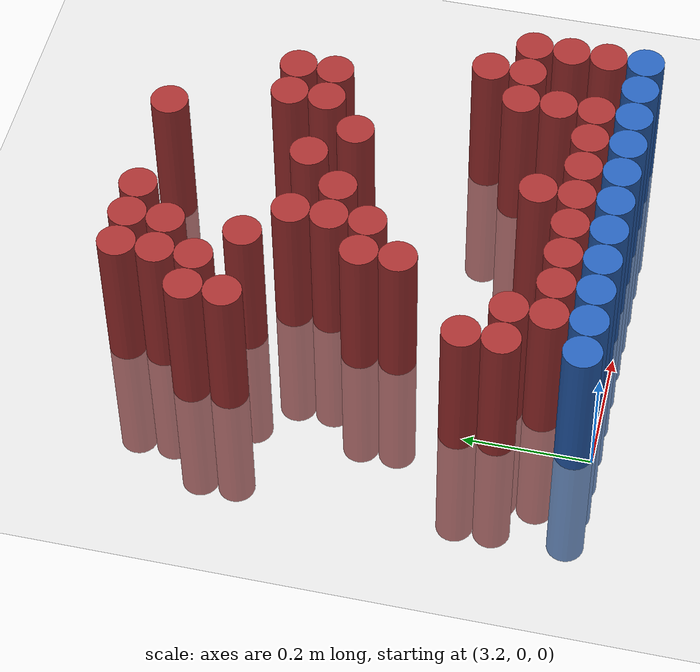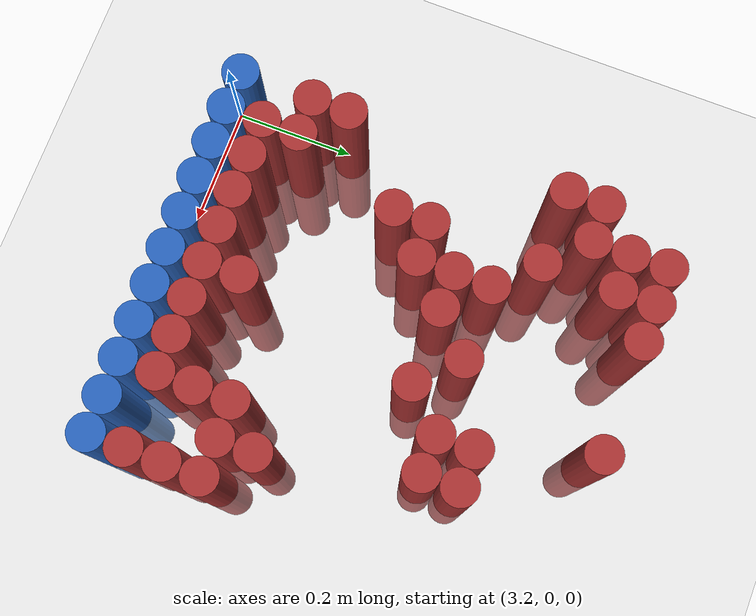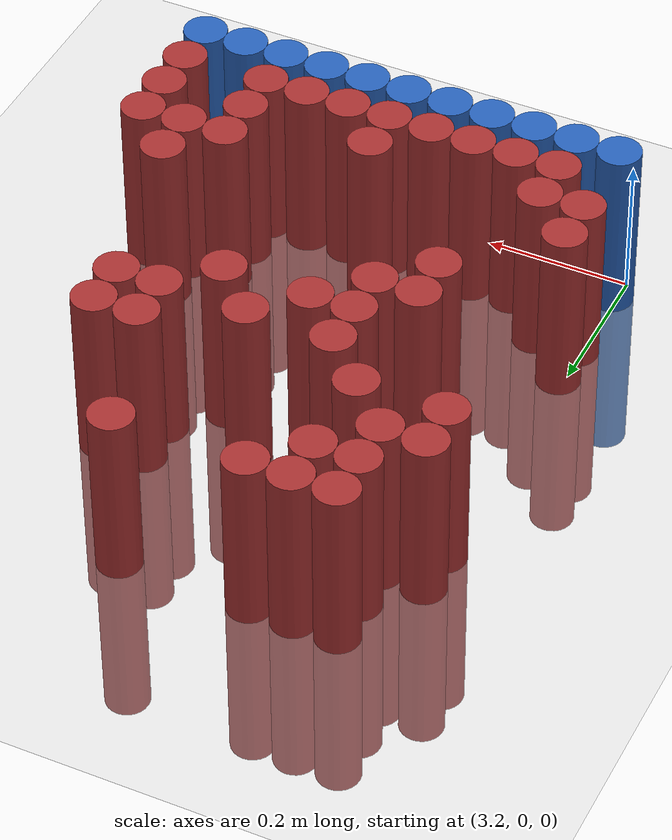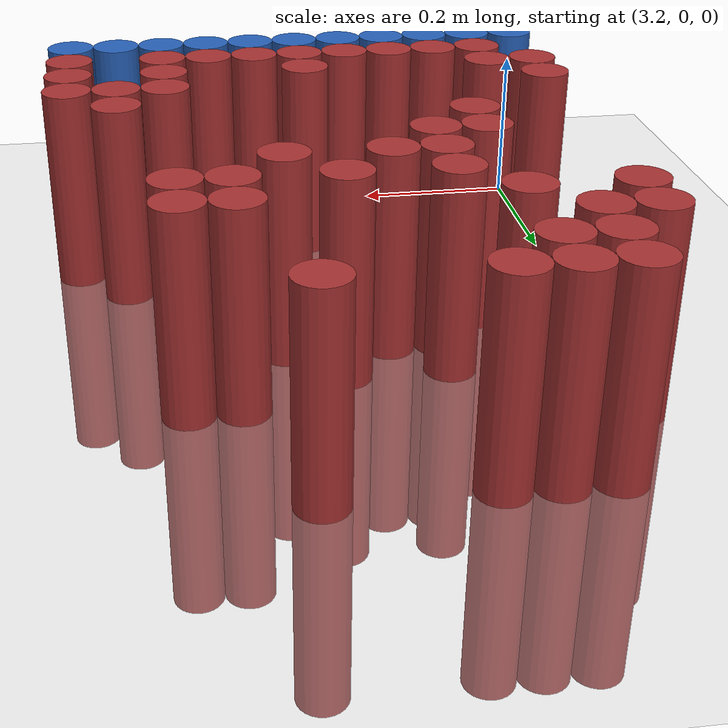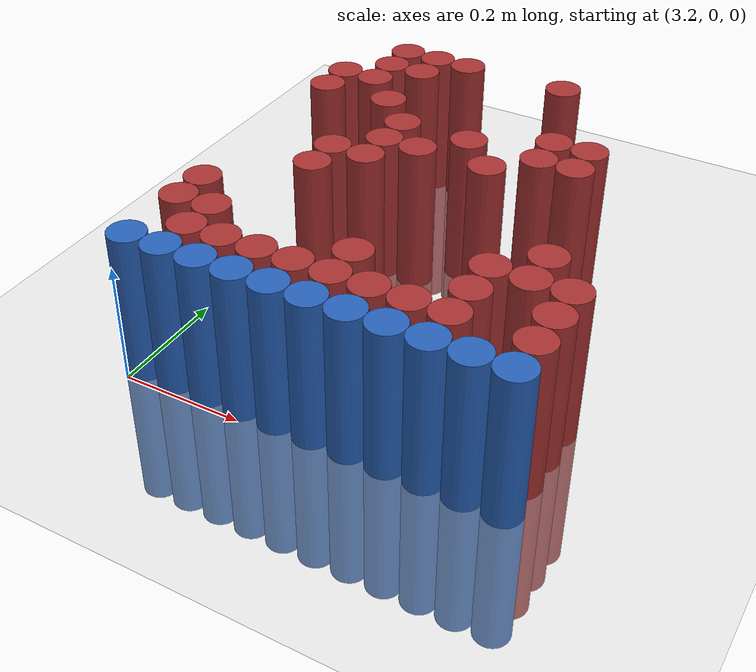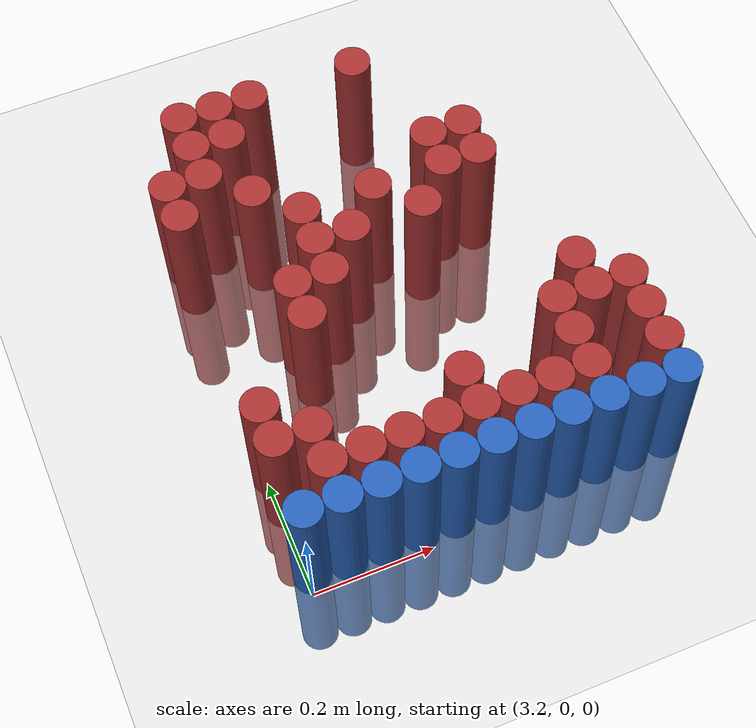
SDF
<sdf version="1.6">
 <world name="default">
  <model name="ground_plane">
   <static>1</static>
   <link name="link">
    <collision name="collision">
     <geometry><plane><normal>0 0 1</normal><size>100 100</size></plane></geometry>
     <surface><friction><ode><mu>100</mu><mu2>50</mu2></ode></friction></surface>
    </collision>
    <visual name="visual">
     <cast_shadows>0</cast_shadows>
     <geometry><plane><normal>0 0 1</normal><size>100 100</size></plane></geometry>
     <material>
      <script><uri>file://media/materials/scripts/gazebo.material</uri><name>Gazebo/Grey</name></script>
     </material>
    </visual>
   </link>
  </model>
  <model name="unit_cylinder_237">
   <static>1</static>
   <pose>3.270000 0.750000 0.000000 0.000000 0.000000 0.000000</pose>
   <link name="link">
    <inertial>
     <mass>1</mass>
     <inertia><ixx>0.145833</ixx><ixy>0</ixy><ixz>0</ixz><iyy>0.145833</iyy><iyz>0</iyz><izz>0.125</izz></inertia>
    </inertial>
    <collision name="collision">
     <geometry><cylinder><radius>0.030000</radius><length>0.5</length></cylinder></geometry>
    </collision>
    <visual name="visual">
     <geometry><cylinder><radius>0.030000</radius><length>0.5</length></cylinder></geometry>
     <material>
      <ambient>0.648000 0.192000 0.192000 1</ambient>
      <diffuse>0.648000 0.192000 0.192000 1</diffuse>
     </material>
     <material>
      <script><name>Gazebo/Grey</name><uri>file://media/materials/scripts/gazebo.material</uri></script>
     </material>
    </visual>
   </link>
  </model>
  <model name="unit_cylinder_238">
   <static>1</static>
   <pose>3.330000 0.750000 0.000000 0.000000 0.000000 0.000000</pose>
   <link name="link">
    <inertial>
     <mass>1</mass>
     <inertia><ixx>0.145833</ixx><ixy>0</ixy><ixz>0</ixz><iyy>0.145833</iyy><iyz>0</iyz><izz>0.125</izz></inertia>
    </inertial>
    <collision name="collision">
     <geometry><cylinder><radius>0.030000</radius><length>0.5</length></cylinder></geometry>
    </collision>
    <visual name="visual">
     <geometry><cylinder><radius>0.030000</radius><length>0.5</length></cylinder></geometry>
     <material>
      <ambient>0.648000 0.192000 0.192000 1</ambient>
      <diffuse>0.648000 0.192000 0.192000 1</diffuse>
     </material>
     <material>
      <script><name>Gazebo/Grey</name><uri>file://media/materials/scripts/gazebo.material</uri></script>
     </material>
    </visual>
   </link>
  </model>
  <model name="unit_cylinder_239">
   <static>1</static>
   <pose>3.390000 0.750000 0.000000 0.000000 0.000000 0.000000</pose>
   <link name="link">
    <inertial>
     <mass>1</mass>
     <inertia><ixx>0.145833</ixx><ixy>0</ixy><ixz>0</ixz><iyy>0.145833</iyy><iyz>0</iyz><izz>0.125</izz></inertia>
    </inertial>
    <collision name="collision">
     <geometry><cylinder><radius>0.030000</radius><length>0.5</length></cylinder></geometry>
    </collision>
    <visual name="visual">
     <geometry><cylinder><radius>0.030000</radius><length>0.5</length></cylinder></geometry>
     <material>
      <ambient>0.648000 0.192000 0.192000 1</ambient>
      <diffuse>0.648000 0.192000 0.192000 1</diffuse>
     </material>
     <material>
      <script><name>Gazebo/Grey</name><uri>file://media/materials/scripts/gazebo.material</uri></script>
     </material>
    </visual>
   </link>
  </model>
  <model name="unit_cylinder_240">
   <static>1</static>
   <pose>3.570000 0.750000 0.000000 0.000000 0.000000 0.000000</pose>
   <link name="link">
    <inertial>
     <mass>1</mass>
     <inertia><ixx>0.145833</ixx><ixy>0</ixy><ixz>0</ixz><iyy>0.145833</iyy><iyz>0</iyz><izz>0.125</izz></inertia>
    </inertial>
    <collision name="collision">
     <geometry><cylinder><radius>0.030000</radius><length>0.5</length></cylinder></geometry>
    </collision>
    <visual name="visual">
     <geometry><cylinder><radius>0.030000</radius><length>0.5</length></cylinder></geometry>
     <material>
      <ambient>0.648000 0.192000 0.192000 1</ambient>
      <diffuse>0.648000 0.192000 0.192000 1</diffuse>
     </material>
     <material>
      <script><name>Gazebo/Grey</name><uri>file://media/materials/scripts/gazebo.material</uri></script>
     </material>
    </visual>
   </link>
  </model>
  <model name="unit_cylinder_251">
   <static>1</static>
   <pose>3.270000 0.690000 0.000000 0.000000 0.000000 0.000000</pose>
   <link name="link">
    <inertial>
     <mass>1</mass>
     <inertia><ixx>0.145833</ixx><ixy>0</ixy><ixz>0</ixz><iyy>0.145833</iyy><iyz>0</iyz><izz>0.125</izz></inertia>
    </inertial>
    <collision name="collision">
     <geometry><cylinder><radius>0.030000</radius><length>0.5</length></cylinder></geometry>
    </collision>
    <visual name="visual">
     <geometry><cylinder><radius>0.030000</radius><length>0.5</length></cylinder></geometry>
     <material>
      <ambient>0.648000 0.192000 0.192000 1</ambient>
      <diffuse>0.648000 0.192000 0.192000 1</diffuse>
     </material>
     <material>
      <script><name>Gazebo/Grey</name><uri>file://media/materials/scripts/gazebo.material</uri></script>
     </material>
    </visual>
   </link>
  </model>
  <model name="unit_cylinder_252">
   <static>1</static>
   <pose>3.330000 0.690000 0.000000 0.000000 0.000000 0.000000</pose>
   <link name="link">
    <inertial>
     <mass>1</mass>
     <inertia><ixx>0.145833</ixx><ixy>0</ixy><ixz>0</ixz><iyy>0.145833</iyy><iyz>0</iyz><izz>0.125</izz></inertia>
    </inertial>
    <collision name="collision">
     <geometry><cylinder><radius>0.030000</radius><length>0.5</length></cylinder></geometry>
    </collision>
    <visual name="visual">
     <geometry><cylinder><radius>0.030000</radius><length>0.5</length></cylinder></geometry>
     <material>
      <ambient>0.648000 0.192000 0.192000 1</ambient>
      <diffuse>0.648000 0.192000 0.192000 1</diffuse>
     </material>
     <material>
      <script><name>Gazebo/Grey</name><uri>file://media/materials/scripts/gazebo.material</uri></script>
     </material>
    </visual>
   </link>
  </model>
  <model name="unit_cylinder_261">
   <static>1</static>
   <pose>3.210000 0.630000 0.000000 0.000000 0.000000 0.000000</pose>
   <link name="link">
    <inertial>
     <mass>1</mass>
     <inertia><ixx>0.145833</ixx><ixy>0</ixy><ixz>0</ixz><iyy>0.145833</iyy><iyz>0</iyz><izz>0.125</izz></inertia>
    </inertial>
    <collision name="collision">
     <geometry><cylinder><radius>0.030000</radius><length>0.5</length></cylinder></geometry>
    </collision>
    <visual name="visual">
     <geometry><cylinder><radius>0.030000</radius><length>0.5</length></cylinder></geometry>
     <material>
      <ambient>0.648000 0.192000 0.192000 1</ambient>
      <diffuse>0.648000 0.192000 0.192000 1</diffuse>
     </material>
     <material>
      <script><name>Gazebo/Grey</name><uri>file://media/materials/scripts/gazebo.material</uri></script>
     </material>
    </visual>
   </link>
  </model>
  <model name="unit_cylinder_262">
   <static>1</static>
   <pose>3.270000 0.630000 0.000000 0.000000 0.000000 0.000000</pose>
   <link name="link">
    <inertial>
     <mass>1</mass>
     <inertia><ixx>0.145833</ixx><ixy>0</ixy><ixz>0</ixz><iyy>0.145833</iyy><iyz>0</iyz><izz>0.125</izz></inertia>
    </inertial>
    <collision name="collision">
     <geometry><cylinder><radius>0.030000</radius><length>0.5</length></cylinder></geometry>
    </collision>
    <visual name="visual">
     <geometry><cylinder><radius>0.030000</radius><length>0.5</length></cylinder></geometry>
     <material>
      <ambient>0.648000 0.192000 0.192000 1</ambient>
      <diffuse>0.648000 0.192000 0.192000 1</diffuse>
     </material>
     <material>
      <script><name>Gazebo/Grey</name><uri>file://media/materials/scripts/gazebo.material</uri></script>
     </material>
    </visual>
   </link>
  </model>
  <model name="unit_cylinder_270">
   <static>1</static>
   <pose>3.210000 0.570000 0.000000 0.000000 0.000000 0.000000</pose>
   <link name="link">
    <inertial>
     <mass>1</mass>
     <inertia><ixx>0.145833</ixx><ixy>0</ixy><ixz>0</ixz><iyy>0.145833</iyy><iyz>0</iyz><izz>0.125</izz></inertia>
    </inertial>
    <collision name="collision">
     <geometry><cylinder><radius>0.030000</radius><length>0.5</length></cylinder></geometry>
    </collision>
    <visual name="visual">
     <geometry><cylinder><radius>0.030000</radius><length>0.5</length></cylinder></geometry>
     <material>
      <ambient>0.648000 0.192000 0.192000 1</ambient>
      <diffuse>0.648000 0.192000 0.192000 1</diffuse>
     </material>
     <material>
      <script><name>Gazebo/Grey</name><uri>file://media/materials/scripts/gazebo.material</uri></script>
     </material>
    </visual>
   </link>
  </model>
  <model name="unit_cylinder_271">
   <static>1</static>
   <pose>3.330000 0.570000 0.000000 0.000000 0.000000 0.000000</pose>
   <link name="link">
    <inertial>
     <mass>1</mass>
     <inertia><ixx>0.145833</ixx><ixy>0</ixy><ixz>0</ixz><iyy>0.145833</iyy><iyz>0</iyz><izz>0.125</izz></inertia>
    </inertial>
    <collision name="collision">
     <geometry><cylinder><radius>0.030000</radius><length>0.5</length></cylinder></geometry>
    </collision>
    <visual name="visual">
     <geometry><cylinder><radius>0.030000</radius><length>0.5</length></cylinder></geometry>
     <material>
      <ambient>0.648000 0.192000 0.192000 1</ambient>
      <diffuse>0.648000 0.192000 0.192000 1</diffuse>
     </material>
     <material>
      <script><name>Gazebo/Grey</name><uri>file://media/materials/scripts/gazebo.material</uri></script>
     </material>
    </visual>
   </link>
  </model>
  <model name="unit_cylinder_272">
   <static>1</static>
   <pose>3.630000 0.570000 0.000000 0.000000 0.000000 0.000000</pose>
   <link name="link">
    <inertial>
     <mass>1</mass>
     <inertia><ixx>0.145833</ixx><ixy>0</ixy><ixz>0</ixz><iyy>0.145833</iyy><iyz>0</iyz><izz>0.125</izz></inertia>
    </inertial>
    <collision name="collision">
     <geometry><cylinder><radius>0.030000</radius><length>0.5</length></cylinder></geometry>
    </collision>
    <visual name="visual">
     <geometry><cylinder><radius>0.030000</radius><length>0.5</length></cylinder></geometry>
     <material>
      <ambient>0.648000 0.192000 0.192000 1</ambient>
      <diffuse>0.648000 0.192000 0.192000 1</diffuse>
     </material>
     <material>
      <script><name>Gazebo/Grey</name><uri>file://media/materials/scripts/gazebo.material</uri></script>
     </material>
    </visual>
   </link>
  </model>
  <model name="unit_cylinder_273">
   <static>1</static>
   <pose>3.690000 0.570000 0.000000 0.000000 0.000000 0.000000</pose>
   <link name="link">
    <inertial>
     <mass>1</mass>
     <inertia><ixx>0.145833</ixx><ixy>0</ixy><ixz>0</ixz><iyy>0.145833</iyy><iyz>0</iyz><izz>0.125</izz></inertia>
    </inertial>
    <collision name="collision">
     <geometry><cylinder><radius>0.030000</radius><length>0.5</length></cylinder></geometry>
    </collision>
    <visual name="visual">
     <geometry><cylinder><radius>0.030000</radius><length>0.5</length></cylinder></geometry>
     <material>
      <ambient>0.648000 0.192000 0.192000 1</ambient>
      <diffuse>0.648000 0.192000 0.192000 1</diffuse>
     </material>
     <material>
      <script><name>Gazebo/Grey</name><uri>file://media/materials/scripts/gazebo.material</uri></script>
     </material>
    </visual>
   </link>
  </model>
  <model name="unit_cylinder_278">
   <static>1</static>
   <pose>3.390000 0.510000 0.000000 0.000000 0.000000 0.000000</pose>
   <link name="link">
    <inertial>
     <mass>1</mass>
     <inertia><ixx>0.145833</ixx><ixy>0</ixy><ixz>0</ixz><iyy>0.145833</iyy><iyz>0</iyz><izz>0.125</izz></inertia>
    </inertial>
    <collision name="collision">
     <geometry><cylinder><radius>0.030000</radius><length>0.5</length></cylinder></geometry>
    </collision>
    <visual name="visual">
     <geometry><cylinder><radius>0.030000</radius><length>0.5</length></cylinder></geometry>
     <material>
      <ambient>0.648000 0.192000 0.192000 1</ambient>
      <diffuse>0.648000 0.192000 0.192000 1</diffuse>
     </material>
     <material>
      <script><name>Gazebo/Grey</name><uri>file://media/materials/scripts/gazebo.material</uri></script>
     </material>
    </visual>
   </link>
  </model>
  <model name="unit_cylinder_279">
   <static>1</static>
   <pose>3.510000 0.510000 0.000000 0.000000 0.000000 0.000000</pose>
   <link name="link">
    <inertial>
     <mass>1</mass>
     <inertia><ixx>0.145833</ixx><ixy>0</ixy><ixz>0</ixz><iyy>0.145833</iyy><iyz>0</iyz><izz>0.125</izz></inertia>
    </inertial>
    <collision name="collision">
     <geometry><cylinder><radius>0.030000</radius><length>0.5</length></cylinder></geometry>
    </collision>
    <visual name="visual">
     <geometry><cylinder><radius>0.030000</radius><length>0.5</length></cylinder></geometry>
     <material>
      <ambient>0.648000 0.192000 0.192000 1</ambient>
      <diffuse>0.648000 0.192000 0.192000 1</diffuse>
     </material>
     <material>
      <script><name>Gazebo/Grey</name><uri>file://media/materials/scripts/gazebo.material</uri></script>
     </material>
    </visual>
   </link>
  </model>
  <model name="unit_cylinder_280">
   <static>1</static>
   <pose>3.630000 0.510000 0.000000 0.000000 0.000000 0.000000</pose>
   <link name="link">
    <inertial>
     <mass>1</mass>
     <inertia><ixx>0.145833</ixx><ixy>0</ixy><ixz>0</ixz><iyy>0.145833</iyy><iyz>0</iyz><izz>0.125</izz></inertia>
    </inertial>
    <collision name="collision">
     <geometry><cylinder><radius>0.030000</radius><length>0.5</length></cylinder></geometry>
    </collision>
    <visual name="visual">
     <geometry><cylinder><radius>0.030000</radius><length>0.5</length></cylinder></geometry>
     <material>
      <ambient>0.648000 0.192000 0.192000 1</ambient>
      <diffuse>0.648000 0.192000 0.192000 1</diffuse>
     </material>
     <material>
      <script><name>Gazebo/Grey</name><uri>file://media/materials/scripts/gazebo.material</uri></script>
     </material>
    </visual>
   </link>
  </model>
  <model name="unit_cylinder_281">
   <static>1</static>
   <pose>3.690000 0.510000 0.000000 0.000000 0.000000 0.000000</pose>
   <link name="link">
    <inertial>
     <mass>1</mass>
     <inertia><ixx>0.145833</ixx><ixy>0</ixy><ixz>0</ixz><iyy>0.145833</iyy><iyz>0</iyz><izz>0.125</izz></inertia>
    </inertial>
    <collision name="collision">
     <geometry><cylinder><radius>0.030000</radius><length>0.5</length></cylinder></geometry>
    </collision>
    <visual name="visual">
     <geometry><cylinder><radius>0.030000</radius><length>0.5</length></cylinder></geometry>
     <material>
      <ambient>0.648000 0.192000 0.192000 1</ambient>
      <diffuse>0.648000 0.192000 0.192000 1</diffuse>
     </material>
     <material>
      <script><name>Gazebo/Grey</name><uri>file://media/materials/scripts/gazebo.material</uri></script>
     </material>
    </visual>
   </link>
  </model>
  <model name="unit_cylinder_284">
   <static>1</static>
   <pose>3.390000 0.450000 0.000000 0.000000 0.000000 0.000000</pose>
   <link name="link">
    <inertial>
     <mass>1</mass>
     <inertia><ixx>0.145833</ixx><ixy>0</ixy><ixz>0</ixz><iyy>0.145833</iyy><iyz>0</iyz><izz>0.125</izz></inertia>
    </inertial>
    <collision name="collision">
     <geometry><cylinder><radius>0.030000</radius><length>0.5</length></cylinder></geometry>
    </collision>
    <visual name="visual">
     <geometry><cylinder><radius>0.030000</radius><length>0.5</length></cylinder></geometry>
     <material>
      <ambient>0.648000 0.192000 0.192000 1</ambient>
      <diffuse>0.648000 0.192000 0.192000 1</diffuse>
     </material>
     <material>
      <script><name>Gazebo/Grey</name><uri>file://media/materials/scripts/gazebo.material</uri></script>
     </material>
    </visual>
   </link>
  </model>
  <model name="unit_cylinder_285">
   <static>1</static>
   <pose>3.450000 0.450000 0.000000 0.000000 0.000000 0.000000</pose>
   <link name="link">
    <inertial>
     <mass>1</mass>
     <inertia><ixx>0.145833</ixx><ixy>0</ixy><ixz>0</ixz><iyy>0.145833</iyy><iyz>0</iyz><izz>0.125</izz></inertia>
    </inertial>
    <collision name="collision">
     <geometry><cylinder><radius>0.030000</radius><length>0.5</length></cylinder></geometry>
    </collision>
    <visual name="visual">
     <geometry><cylinder><radius>0.030000</radius><length>0.5</length></cylinder></geometry>
     <material>
      <ambient>0.648000 0.192000 0.192000 1</ambient>
      <diffuse>0.648000 0.192000 0.192000 1</diffuse>
     </material>
     <material>
      <script><name>Gazebo/Grey</name><uri>file://media/materials/scripts/gazebo.material</uri></script>
     </material>
    </visual>
   </link>
  </model>
  <model name="unit_cylinder_286">
   <static>1</static>
   <pose>3.570000 0.450000 0.000000 0.000000 0.000000 0.000000</pose>
   <link name="link">
    <inertial>
     <mass>1</mass>
     <inertia><ixx>0.145833</ixx><ixy>0</ixy><ixz>0</ixz><iyy>0.145833</iyy><iyz>0</iyz><izz>0.125</izz></inertia>
    </inertial>
    <collision name="collision">
     <geometry><cylinder><radius>0.030000</radius><length>0.5</length></cylinder></geometry>
    </collision>
    <visual name="visual">
     <geometry><cylinder><radius>0.030000</radius><length>0.5</length></cylinder></geometry>
     <material>
      <ambient>0.648000 0.192000 0.192000 1</ambient>
      <diffuse>0.648000 0.192000 0.192000 1</diffuse>
     </material>
     <material>
      <script><name>Gazebo/Grey</name><uri>file://media/materials/scripts/gazebo.material</uri></script>
     </material>
    </visual>
   </link>
  </model>
  <model name="unit_cylinder_291">
   <static>1</static>
   <pose>3.330000 0.390000 0.000000 0.000000 0.000000 0.000000</pose>
   <link name="link">
    <inertial>
     <mass>1</mass>
     <inertia><ixx>0.145833</ixx><ixy>0</ixy><ixz>0</ixz><iyy>0.145833</iyy><iyz>0</iyz><izz>0.125</izz></inertia>
    </inertial>
    <collision name="collision">
     <geometry><cylinder><radius>0.030000</radius><length>0.5</length></cylinder></geometry>
    </collision>
    <visual name="visual">
     <geometry><cylinder><radius>0.030000</radius><length>0.5</length></cylinder></geometry>
     <material>
      <ambient>0.648000 0.192000 0.192000 1</ambient>
      <diffuse>0.648000 0.192000 0.192000 1</diffuse>
     </material>
     <material>
      <script><name>Gazebo/Grey</name><uri>file://media/materials/scripts/gazebo.material</uri></script>
     </material>
    </visual>
   </link>
  </model>
  <model name="unit_cylinder_292">
   <static>1</static>
   <pose>3.390000 0.390000 0.000000 0.000000 0.000000 0.000000</pose>
   <link name="link">
    <inertial>
     <mass>1</mass>
     <inertia><ixx>0.145833</ixx><ixy>0</ixy><ixz>0</ixz><iyy>0.145833</iyy><iyz>0</iyz><izz>0.125</izz></inertia>
    </inertial>
    <collision name="collision">
     <geometry><cylinder><radius>0.030000</radius><length>0.5</length></cylinder></geometry>
    </collision>
    <visual name="visual">
     <geometry><cylinder><radius>0.030000</radius><length>0.5</length></cylinder></geometry>
     <material>
      <ambient>0.648000 0.192000 0.192000 1</ambient>
      <diffuse>0.648000 0.192000 0.192000 1</diffuse>
     </material>
     <material>
      <script><name>Gazebo/Grey</name><uri>file://media/materials/scripts/gazebo.material</uri></script>
     </material>
    </visual>
   </link>
  </model>
  <model name="unit_cylinder_295">
   <static>1</static>
   <pose>3.330000 0.330000 0.000000 0.000000 0.000000 0.000000</pose>
   <link name="link">
    <inertial>
     <mass>1</mass>
     <inertia><ixx>0.145833</ixx><ixy>0</ixy><ixz>0</ixz><iyy>0.145833</iyy><iyz>0</iyz><izz>0.125</izz></inertia>
    </inertial>
    <collision name="collision">
     <geometry><cylinder><radius>0.030000</radius><length>0.5</length></cylinder></geometry>
    </collision>
    <visual name="visual">
     <geometry><cylinder><radius>0.030000</radius><length>0.5</length></cylinder></geometry>
     <material>
      <ambient>0.648000 0.192000 0.192000 1</ambient>
      <diffuse>0.648000 0.192000 0.192000 1</diffuse>
     </material>
     <material>
      <script><name>Gazebo/Grey</name><uri>file://media/materials/scripts/gazebo.material</uri></script>
     </material>
    </visual>
   </link>
  </model>
  <model name="unit_cylinder_300">
   <static>1</static>
   <pose>3.750000 0.270000 0.000000 0.000000 0.000000 0.000000</pose>
   <link name="link">
    <inertial>
     <mass>1</mass>
     <inertia><ixx>0.145833</ixx><ixy>0</ixy><ixz>0</ixz><iyy>0.145833</iyy><iyz>0</iyz><izz>0.125</izz></inertia>
    </inertial>
    <collision name="collision">
     <geometry><cylinder><radius>0.030000</radius><length>0.5</length></cylinder></geometry>
    </collision>
    <visual name="visual">
     <geometry><cylinder><radius>0.030000</radius><length>0.5</length></cylinder></geometry>
     <material>
      <ambient>0.648000 0.192000 0.192000 1</ambient>
      <diffuse>0.648000 0.192000 0.192000 1</diffuse>
     </material>
     <material>
      <script><name>Gazebo/Grey</name><uri>file://media/materials/scripts/gazebo.material</uri></script>
     </material>
    </visual>
   </link>
  </model>
  <model name="unit_cylinder_305">
   <static>1</static>
   <pose>3.210000 0.210000 0.000000 0.000000 0.000000 0.000000</pose>
   <link name="link">
    <inertial>
     <mass>1</mass>
     <inertia><ixx>0.145833</ixx><ixy>0</ixy><ixz>0</ixz><iyy>0.145833</iyy><iyz>0</iyz><izz>0.125</izz></inertia>
    </inertial>
    <collision name="collision">
     <geometry><cylinder><radius>0.030000</radius><length>0.5</length></cylinder></geometry>
    </collision>
    <visual name="visual">
     <geometry><cylinder><radius>0.030000</radius><length>0.5</length></cylinder></geometry>
     <material>
      <ambient>0.648000 0.192000 0.192000 1</ambient>
      <diffuse>0.648000 0.192000 0.192000 1</diffuse>
     </material>
     <material>
      <script><name>Gazebo/Grey</name><uri>file://media/materials/scripts/gazebo.material</uri></script>
     </material>
    </visual>
   </link>
  </model>
  <model name="unit_cylinder_306">
   <static>1</static>
   <pose>3.690000 0.210000 0.000000 0.000000 0.000000 0.000000</pose>
   <link name="link">
    <inertial>
     <mass>1</mass>
     <inertia><ixx>0.145833</ixx><ixy>0</ixy><ixz>0</ixz><iyy>0.145833</iyy><iyz>0</iyz><izz>0.125</izz></inertia>
    </inertial>
    <collision name="collision">
     <geometry><cylinder><radius>0.030000</radius><length>0.5</length></cylinder></geometry>
    </collision>
    <visual name="visual">
     <geometry><cylinder><radius>0.030000</radius><length>0.5</length></cylinder></geometry>
     <material>
      <ambient>0.648000 0.192000 0.192000 1</ambient>
      <diffuse>0.648000 0.192000 0.192000 1</diffuse>
     </material>
     <material>
      <script><name>Gazebo/Grey</name><uri>file://media/materials/scripts/gazebo.material</uri></script>
     </material>
    </visual>
   </link>
  </model>
  <model name="unit_cylinder_307">
   <static>1</static>
   <pose>3.750000 0.210000 0.000000 0.000000 0.000000 0.000000</pose>
   <link name="link">
    <inertial>
     <mass>1</mass>
     <inertia><ixx>0.145833</ixx><ixy>0</ixy><ixz>0</ixz><iyy>0.145833</iyy><iyz>0</iyz><izz>0.125</izz></inertia>
    </inertial>
    <collision name="collision">
     <geometry><cylinder><radius>0.030000</radius><length>0.5</length></cylinder></geometry>
    </collision>
    <visual name="visual">
     <geometry><cylinder><radius>0.030000</radius><length>0.5</length></cylinder></geometry>
     <material>
      <ambient>0.648000 0.192000 0.192000 1</ambient>
      <diffuse>0.648000 0.192000 0.192000 1</diffuse>
     </material>
     <material>
      <script><name>Gazebo/Grey</name><uri>file://media/materials/scripts/gazebo.material</uri></script>
     </material>
    </visual>
   </link>
  </model>
  <model name="unit_cylinder_308">
   <static>1</static>
   <pose>3.810000 0.210000 0.000000 0.000000 0.000000 0.000000</pose>
   <link name="link">
    <inertial>
     <mass>1</mass>
     <inertia><ixx>0.145833</ixx><ixy>0</ixy><ixz>0</ixz><iyy>0.145833</iyy><iyz>0</iyz><izz>0.125</izz></inertia>
    </inertial>
    <collision name="collision">
     <geometry><cylinder><radius>0.030000</radius><length>0.5</length></cylinder></geometry>
    </collision>
    <visual name="visual">
     <geometry><cylinder><radius>0.030000</radius><length>0.5</length></cylinder></geometry>
     <material>
      <ambient>0.648000 0.192000 0.192000 1</ambient>
      <diffuse>0.648000 0.192000 0.192000 1</diffuse>
     </material>
     <material>
      <script><name>Gazebo/Grey</name><uri>file://media/materials/scripts/gazebo.material</uri></script>
     </material>
    </visual>
   </link>
  </model>
  <model name="unit_cylinder_311">
   <static>1</static>
   <pose>3.210000 0.150000 0.000000 0.000000 0.000000 0.000000</pose>
   <link name="link">
    <inertial>
     <mass>1</mass>
     <inertia><ixx>0.145833</ixx><ixy>0</ixy><ixz>0</ixz><iyy>0.145833</iyy><iyz>0</iyz><izz>0.125</izz></inertia>
    </inertial>
    <collision name="collision">
     <geometry><cylinder><radius>0.030000</radius><length>0.5</length></cylinder></geometry>
    </collision>
    <visual name="visual">
     <geometry><cylinder><radius>0.030000</radius><length>0.5</length></cylinder></geometry>
     <material>
      <ambient>0.648000 0.192000 0.192000 1</ambient>
      <diffuse>0.648000 0.192000 0.192000 1</diffuse>
     </material>
     <material>
      <script><name>Gazebo/Grey</name><uri>file://media/materials/scripts/gazebo.material</uri></script>
     </material>
    </visual>
   </link>
  </model>
  <model name="unit_cylinder_312">
   <static>1</static>
   <pose>3.270000 0.150000 0.000000 0.000000 0.000000 0.000000</pose>
   <link name="link">
    <inertial>
     <mass>1</mass>
     <inertia><ixx>0.145833</ixx><ixy>0</ixy><ixz>0</ixz><iyy>0.145833</iyy><iyz>0</iyz><izz>0.125</izz></inertia>
    </inertial>
    <collision name="collision">
     <geometry><cylinder><radius>0.030000</radius><length>0.5</length></cylinder></geometry>
    </collision>
    <visual name="visual">
     <geometry><cylinder><radius>0.030000</radius><length>0.5</length></cylinder></geometry>
     <material>
      <ambient>0.648000 0.192000 0.192000 1</ambient>
      <diffuse>0.648000 0.192000 0.192000 1</diffuse>
     </material>
     <material>
      <script><name>Gazebo/Grey</name><uri>file://media/materials/scripts/gazebo.material</uri></script>
     </material>
    </visual>
   </link>
  </model>
  <model name="unit_cylinder_313">
   <static>1</static>
   <pose>3.510000 0.150000 0.000000 0.000000 0.000000 0.000000</pose>
   <link name="link">
    <inertial>
     <mass>1</mass>
     <inertia><ixx>0.145833</ixx><ixy>0</ixy><ixz>0</ixz><iyy>0.145833</iyy><iyz>0</iyz><izz>0.125</izz></inertia>
    </inertial>
    <collision name="collision">
     <geometry><cylinder><radius>0.030000</radius><length>0.5</length></cylinder></geometry>
    </collision>
    <visual name="visual">
     <geometry><cylinder><radius>0.030000</radius><length>0.5</length></cylinder></geometry>
     <material>
      <ambient>0.648000 0.192000 0.192000 1</ambient>
      <diffuse>0.648000 0.192000 0.192000 1</diffuse>
     </material>
     <material>
      <script><name>Gazebo/Grey</name><uri>file://media/materials/scripts/gazebo.material</uri></script>
     </material>
    </visual>
   </link>
  </model>
  <model name="unit_cylinder_314">
   <static>1</static>
   <pose>3.690000 0.150000 0.000000 0.000000 0.000000 0.000000</pose>
   <link name="link">
    <inertial>
     <mass>1</mass>
     <inertia><ixx>0.145833</ixx><ixy>0</ixy><ixz>0</ixz><iyy>0.145833</iyy><iyz>0</iyz><izz>0.125</izz></inertia>
    </inertial>
    <collision name="collision">
     <geometry><cylinder><radius>0.030000</radius><length>0.5</length></cylinder></geometry>
    </collision>
    <visual name="visual">
     <geometry><cylinder><radius>0.030000</radius><length>0.5</length></cylinder></geometry>
     <material>
      <ambient>0.648000 0.192000 0.192000 1</ambient>
      <diffuse>0.648000 0.192000 0.192000 1</diffuse>
     </material>
     <material>
      <script><name>Gazebo/Grey</name><uri>file://media/materials/scripts/gazebo.material</uri></script>
     </material>
    </visual>
   </link>
  </model>
  <model name="unit_cylinder_315">
   <static>1</static>
   <pose>3.810000 0.150000 0.000000 0.000000 0.000000 0.000000</pose>
   <link name="link">
    <inertial>
     <mass>1</mass>
     <inertia><ixx>0.145833</ixx><ixy>0</ixy><ixz>0</ixz><iyy>0.145833</iyy><iyz>0</iyz><izz>0.125</izz></inertia>
    </inertial>
    <collision name="collision">
     <geometry><cylinder><radius>0.030000</radius><length>0.5</length></cylinder></geometry>
    </collision>
    <visual name="visual">
     <geometry><cylinder><radius>0.030000</radius><length>0.5</length></cylinder></geometry>
     <material>
      <ambient>0.648000 0.192000 0.192000 1</ambient>
      <diffuse>0.648000 0.192000 0.192000 1</diffuse>
     </material>
     <material>
      <script><name>Gazebo/Grey</name><uri>file://media/materials/scripts/gazebo.material</uri></script>
     </material>
    </visual>
   </link>
  </model>
  <model name="unit_cylinder_325">
   <static>1</static>
   <pose>3.270000 0.090000 0.000000 0.000000 0.000000 0.000000</pose>
   <link name="link">
    <inertial>
     <mass>1</mass>
     <inertia><ixx>0.145833</ixx><ixy>0</ixy><ixz>0</ixz><iyy>0.145833</iyy><iyz>0</iyz><izz>0.125</izz></inertia>
    </inertial>
    <collision name="collision">
     <geometry><cylinder><radius>0.030000</radius><length>0.5</length></cylinder></geometry>
    </collision>
    <visual name="visual">
     <geometry><cylinder><radius>0.030000</radius><length>0.5</length></cylinder></geometry>
     <material>
      <ambient>0.648000 0.192000 0.192000 1</ambient>
      <diffuse>0.648000 0.192000 0.192000 1</diffuse>
     </material>
     <material>
      <script><name>Gazebo/Grey</name><uri>file://media/materials/scripts/gazebo.material</uri></script>
     </material>
    </visual>
   </link>
  </model>
  <model name="unit_cylinder_326">
   <static>1</static>
   <pose>3.330000 0.090000 0.000000 0.000000 0.000000 0.000000</pose>
   <link name="link">
    <inertial>
     <mass>1</mass>
     <inertia><ixx>0.145833</ixx><ixy>0</ixy><ixz>0</ixz><iyy>0.145833</iyy><iyz>0</iyz><izz>0.125</izz></inertia>
    </inertial>
    <collision name="collision">
     <geometry><cylinder><radius>0.030000</radius><length>0.5</length></cylinder></geometry>
    </collision>
    <visual name="visual">
     <geometry><cylinder><radius>0.030000</radius><length>0.5</length></cylinder></geometry>
     <material>
      <ambient>0.648000 0.192000 0.192000 1</ambient>
      <diffuse>0.648000 0.192000 0.192000 1</diffuse>
     </material>
     <material>
      <script><name>Gazebo/Grey</name><uri>file://media/materials/scripts/gazebo.material</uri></script>
     </material>
    </visual>
   </link>
  </model>
  <model name="unit_cylinder_327">
   <static>1</static>
   <pose>3.390000 0.090000 0.000000 0.000000 0.000000 0.000000</pose>
   <link name="link">
    <inertial>
     <mass>1</mass>
     <inertia><ixx>0.145833</ixx><ixy>0</ixy><ixz>0</ixz><iyy>0.145833</iyy><iyz>0</iyz><izz>0.125</izz></inertia>
    </inertial>
    <collision name="collision">
     <geometry><cylinder><radius>0.030000</radius><length>0.5</length></cylinder></geometry>
    </collision>
    <visual name="visual">
     <geometry><cylinder><radius>0.030000</radius><length>0.5</length></cylinder></geometry>
     <material>
      <ambient>0.648000 0.192000 0.192000 1</ambient>
      <diffuse>0.648000 0.192000 0.192000 1</diffuse>
     </material>
     <material>
      <script><name>Gazebo/Grey</name><uri>file://media/materials/scripts/gazebo.material</uri></script>
     </material>
    </visual>
   </link>
  </model>
  <model name="unit_cylinder_328">
   <static>1</static>
   <pose>3.450000 0.090000 0.000000 0.000000 0.000000 0.000000</pose>
   <link name="link">
    <inertial>
     <mass>1</mass>
     <inertia><ixx>0.145833</ixx><ixy>0</ixy><ixz>0</ixz><iyy>0.145833</iyy><iyz>0</iyz><izz>0.125</izz></inertia>
    </inertial>
    <collision name="collision">
     <geometry><cylinder><radius>0.030000</radius><length>0.5</length></cylinder></geometry>
    </collision>
    <visual name="visual">
     <geometry><cylinder><radius>0.030000</radius><length>0.5</length></cylinder></geometry>
     <material>
      <ambient>0.648000 0.192000 0.192000 1</ambient>
      <diffuse>0.648000 0.192000 0.192000 1</diffuse>
     </material>
     <material>
      <script><name>Gazebo/Grey</name><uri>file://media/materials/scripts/gazebo.material</uri></script>
     </material>
    </visual>
   </link>
  </model>
  <model name="unit_cylinder_329">
   <static>1</static>
   <pose>3.510000 0.090000 0.000000 0.000000 0.000000 0.000000</pose>
   <link name="link">
    <inertial>
     <mass>1</mass>
     <inertia><ixx>0.145833</ixx><ixy>0</ixy><ixz>0</ixz><iyy>0.145833</iyy><iyz>0</iyz><izz>0.125</izz></inertia>
    </inertial>
    <collision name="collision">
     <geometry><cylinder><radius>0.030000</radius><length>0.5</length></cylinder></geometry>
    </collision>
    <visual name="visual">
     <geometry><cylinder><radius>0.030000</radius><length>0.5</length></cylinder></geometry>
     <material>
      <ambient>0.648000 0.192000 0.192000 1</ambient>
      <diffuse>0.648000 0.192000 0.192000 1</diffuse>
     </material>
     <material>
      <script><name>Gazebo/Grey</name><uri>file://media/materials/scripts/gazebo.material</uri></script>
     </material>
    </visual>
   </link>
  </model>
  <model name="unit_cylinder_330">
   <static>1</static>
   <pose>3.570000 0.090000 0.000000 0.000000 0.000000 0.000000</pose>
   <link name="link">
    <inertial>
     <mass>1</mass>
     <inertia><ixx>0.145833</ixx><ixy>0</ixy><ixz>0</ixz><iyy>0.145833</iyy><iyz>0</iyz><izz>0.125</izz></inertia>
    </inertial>
    <collision name="collision">
     <geometry><cylinder><radius>0.030000</radius><length>0.5</length></cylinder></geometry>
    </collision>
    <visual name="visual">
     <geometry><cylinder><radius>0.030000</radius><length>0.5</length></cylinder></geometry>
     <material>
      <ambient>0.648000 0.192000 0.192000 1</ambient>
      <diffuse>0.648000 0.192000 0.192000 1</diffuse>
     </material>
     <material>
      <script><name>Gazebo/Grey</name><uri>file://media/materials/scripts/gazebo.material</uri></script>
     </material>
    </visual>
   </link>
  </model>
  <model name="unit_cylinder_331">
   <static>1</static>
   <pose>3.630000 0.090000 0.000000 0.000000 0.000000 0.000000</pose>
   <link name="link">
    <inertial>
     <mass>1</mass>
     <inertia><ixx>0.145833</ixx><ixy>0</ixy><ixz>0</ixz><iyy>0.145833</iyy><iyz>0</iyz><izz>0.125</izz></inertia>
    </inertial>
    <collision name="collision">
     <geometry><cylinder><radius>0.030000</radius><length>0.5</length></cylinder></geometry>
    </collision>
    <visual name="visual">
     <geometry><cylinder><radius>0.030000</radius><length>0.5</length></cylinder></geometry>
     <material>
      <ambient>0.648000 0.192000 0.192000 1</ambient>
      <diffuse>0.648000 0.192000 0.192000 1</diffuse>
     </material>
     <material>
      <script><name>Gazebo/Grey</name><uri>file://media/materials/scripts/gazebo.material</uri></script>
     </material>
    </visual>
   </link>
  </model>
  <model name="unit_cylinder_332">
   <static>1</static>
   <pose>3.690000 0.090000 0.000000 0.000000 0.000000 0.000000</pose>
   <link name="link">
    <inertial>
     <mass>1</mass>
     <inertia><ixx>0.145833</ixx><ixy>0</ixy><ixz>0</ixz><iyy>0.145833</iyy><iyz>0</iyz><izz>0.125</izz></inertia>
    </inertial>
    <collision name="collision">
     <geometry><cylinder><radius>0.030000</radius><length>0.5</length></cylinder></geometry>
    </collision>
    <visual name="visual">
     <geometry><cylinder><radius>0.030000</radius><length>0.5</length></cylinder></geometry>
     <material>
      <ambient>0.648000 0.192000 0.192000 1</ambient>
      <diffuse>0.648000 0.192000 0.192000 1</diffuse>
     </material>
     <material>
      <script><name>Gazebo/Grey</name><uri>file://media/materials/scripts/gazebo.material</uri></script>
     </material>
    </visual>
   </link>
  </model>
  <model name="unit_cylinder_333">
   <static>1</static>
   <pose>3.810000 0.090000 0.000000 0.000000 0.000000 0.000000</pose>
   <link name="link">
    <inertial>
     <mass>1</mass>
     <inertia><ixx>0.145833</ixx><ixy>0</ixy><ixz>0</ixz><iyy>0.145833</iyy><iyz>0</iyz><izz>0.125</izz></inertia>
    </inertial>
    <collision name="collision">
     <geometry><cylinder><radius>0.030000</radius><length>0.5</length></cylinder></geometry>
    </collision>
    <visual name="visual">
     <geometry><cylinder><radius>0.030000</radius><length>0.5</length></cylinder></geometry>
     <material>
      <ambient>0.648000 0.192000 0.192000 1</ambient>
      <diffuse>0.648000 0.192000 0.192000 1</diffuse>
     </material>
     <material>
      <script><name>Gazebo/Grey</name><uri>file://media/materials/scripts/gazebo.material</uri></script>
     </material>
    </visual>
   </link>
  </model>
  <model name="unit_cylinder_353">
   <static>1</static>
   <pose>3.210000 0.030000 0.000000 0.000000 0.000000 0.000000</pose>
   <link name="link">
    <inertial>
     <mass>1</mass>
     <inertia><ixx>0.145833</ixx><ixy>0</ixy><ixz>0</ixz><iyy>0.145833</iyy><iyz>0</iyz><izz>0.125</izz></inertia>
    </inertial>
    <collision name="collision">
     <geometry><cylinder><radius>0.030000</radius><length>0.5</length></cylinder></geometry>
    </collision>
    <visual name="visual">
     <geometry><cylinder><radius>0.030000</radius><length>0.5</length></cylinder></geometry>
     <material>
      <ambient>0.152000 0.379000 0.720000 1</ambient>
      <diffuse>0.152000 0.379000 0.720000 1</diffuse>
     </material>
     <material>
      <script><name>Gazebo/Grey</name><uri>file://media/materials/scripts/gazebo.material</uri></script>
     </material>
    </visual>
   </link>
  </model>
  <model name="unit_cylinder_354">
   <static>1</static>
   <pose>3.270000 0.030000 0.000000 0.000000 0.000000 0.000000</pose>
   <link name="link">
    <inertial>
     <mass>1</mass>
     <inertia><ixx>0.145833</ixx><ixy>0</ixy><ixz>0</ixz><iyy>0.145833</iyy><iyz>0</iyz><izz>0.125</izz></inertia>
    </inertial>
    <collision name="collision">
     <geometry><cylinder><radius>0.030000</radius><length>0.5</length></cylinder></geometry>
    </collision>
    <visual name="visual">
     <geometry><cylinder><radius>0.030000</radius><length>0.5</length></cylinder></geometry>
     <material>
      <ambient>0.152000 0.379000 0.720000 1</ambient>
      <diffuse>0.152000 0.379000 0.720000 1</diffuse>
     </material>
     <material>
      <script><name>Gazebo/Grey</name><uri>file://media/materials/scripts/gazebo.material</uri></script>
     </material>
    </visual>
   </link>
  </model>
  <model name="unit_cylinder_355">
   <static>1</static>
   <pose>3.330000 0.030000 0.000000 0.000000 0.000000 0.000000</pose>
   <link name="link">
    <inertial>
     <mass>1</mass>
     <inertia><ixx>0.145833</ixx><ixy>0</ixy><ixz>0</ixz><iyy>0.145833</iyy><iyz>0</iyz><izz>0.125</izz></inertia>
    </inertial>
    <collision name="collision">
     <geometry><cylinder><radius>0.030000</radius><length>0.5</length></cylinder></geometry>
    </collision>
    <visual name="visual">
     <geometry><cylinder><radius>0.030000</radius><length>0.5</length></cylinder></geometry>
     <material>
      <ambient>0.152000 0.379000 0.720000 1</ambient>
      <diffuse>0.152000 0.379000 0.720000 1</diffuse>
     </material>
     <material>
      <script><name>Gazebo/Grey</name><uri>file://media/materials/scripts/gazebo.material</uri></script>
     </material>
    </visual>
   </link>
  </model>
  <model name="unit_cylinder_356">
   <static>1</static>
   <pose>3.390000 0.030000 0.000000 0.000000 0.000000 0.000000</pose>
   <link name="link">
    <inertial>
     <mass>1</mass>
     <inertia><ixx>0.145833</ixx><ixy>0</ixy><ixz>0</ixz><iyy>0.145833</iyy><iyz>0</iyz><izz>0.125</izz></inertia>
    </inertial>
    <collision name="collision">
     <geometry><cylinder><radius>0.030000</radius><length>0.5</length></cylinder></geometry>
    </collision>
    <visual name="visual">
     <geometry><cylinder><radius>0.030000</radius><length>0.5</length></cylinder></geometry>
     <material>
      <ambient>0.152000 0.379000 0.720000 1</ambient>
      <diffuse>0.152000 0.379000 0.720000 1</diffuse>
     </material>
     <material>
      <script><name>Gazebo/Grey</name><uri>file://media/materials/scripts/gazebo.material</uri></script>
     </material>
    </visual>
   </link>
  </model>
  <model name="unit_cylinder_357">
   <static>1</static>
   <pose>3.450000 0.030000 0.000000 0.000000 0.000000 0.000000</pose>
   <link name="link">
    <inertial>
     <mass>1</mass>
     <inertia><ixx>0.145833</ixx><ixy>0</ixy><ixz>0</ixz><iyy>0.145833</iyy><iyz>0</iyz><izz>0.125</izz></inertia>
    </inertial>
    <collision name="collision">
     <geometry><cylinder><radius>0.030000</radius><length>0.5</length></cylinder></geometry>
    </collision>
    <visual name="visual">
     <geometry><cylinder><radius>0.030000</radius><length>0.5</length></cylinder></geometry>
     <material>
      <ambient>0.152000 0.379000 0.720000 1</ambient>
      <diffuse>0.152000 0.379000 0.720000 1</diffuse>
     </material>
     <material>
      <script><name>Gazebo/Grey</name><uri>file://media/materials/scripts/gazebo.material</uri></script>
     </material>
    </visual>
   </link>
  </model>
  <model name="unit_cylinder_358">
   <static>1</static>
   <pose>3.510000 0.030000 0.000000 0.000000 0.000000 0.000000</pose>
   <link name="link">
    <inertial>
     <mass>1</mass>
     <inertia><ixx>0.145833</ixx><ixy>0</ixy><ixz>0</ixz><iyy>0.145833</iyy><iyz>0</iyz><izz>0.125</izz></inertia>
    </inertial>
    <collision name="collision">
     <geometry><cylinder><radius>0.030000</radius><length>0.5</length></cylinder></geometry>
    </collision>
    <visual name="visual">
     <geometry><cylinder><radius>0.030000</radius><length>0.5</length></cylinder></geometry>
     <material>
      <ambient>0.152000 0.379000 0.720000 1</ambient>
      <diffuse>0.152000 0.379000 0.720000 1</diffuse>
     </material>
     <material>
      <script><name>Gazebo/Grey</name><uri>file://media/materials/scripts/gazebo.material</uri></script>
     </material>
    </visual>
   </link>
  </model>
  <model name="unit_cylinder_359">
   <static>1</static>
   <pose>3.570000 0.030000 0.000000 0.000000 0.000000 0.000000</pose>
   <link name="link">
    <inertial>
     <mass>1</mass>
     <inertia><ixx>0.145833</ixx><ixy>0</ixy><ixz>0</ixz><iyy>0.145833</iyy><iyz>0</iyz><izz>0.125</izz></inertia>
    </inertial>
    <collision name="collision">
     <geometry><cylinder><radius>0.030000</radius><length>0.5</length></cylinder></geometry>
    </collision>
    <visual name="visual">
     <geometry><cylinder><radius>0.030000</radius><length>0.5</length></cylinder></geometry>
     <material>
      <ambient>0.152000 0.379000 0.720000 1</ambient>
      <diffuse>0.152000 0.379000 0.720000 1</diffuse>
     </material>
     <material>
      <script><name>Gazebo/Grey</name><uri>file://media/materials/scripts/gazebo.material</uri></script>
     </material>
    </visual>
   </link>
  </model>
  <model name="unit_cylinder_360">
   <static>1</static>
   <pose>3.630000 0.030000 0.000000 0.000000 0.000000 0.000000</pose>
   <link name="link">
    <inertial>
     <mass>1</mass>
     <inertia><ixx>0.145833</ixx><ixy>0</ixy><ixz>0</ixz><iyy>0.145833</iyy><iyz>0</iyz><izz>0.125</izz></inertia>
    </inertial>
    <collision name="collision">
     <geometry><cylinder><radius>0.030000</radius><length>0.5</length></cylinder></geometry>
    </collision>
    <visual name="visual">
     <geometry><cylinder><radius>0.030000</radius><length>0.5</length></cylinder></geometry>
     <material>
      <ambient>0.152000 0.379000 0.720000 1</ambient>
      <diffuse>0.152000 0.379000 0.720000 1</diffuse>
     </material>
     <material>
      <script><name>Gazebo/Grey</name><uri>file://media/materials/scripts/gazebo.material</uri></script>
     </material>
    </visual>
   </link>
  </model>
  <model name="unit_cylinder_361">
   <static>1</static>
   <pose>3.690000 0.030000 0.000000 0.000000 0.000000 0.000000</pose>
   <link name="link">
    <inertial>
     <mass>1</mass>
     <inertia><ixx>0.145833</ixx><ixy>0</ixy><ixz>0</ixz><iyy>0.145833</iyy><iyz>0</iyz><izz>0.125</izz></inertia>
    </inertial>
    <collision name="collision">
     <geometry><cylinder><radius>0.030000</radius><length>0.5</length></cylinder></geometry>
    </collision>
    <visual name="visual">
     <geometry><cylinder><radius>0.030000</radius><length>0.5</length></cylinder></geometry>
     <material>
      <ambient>0.152000 0.379000 0.720000 1</ambient>
      <diffuse>0.152000 0.379000 0.720000 1</diffuse>
     </material>
     <material>
      <script><name>Gazebo/Grey</name><uri>file://media/materials/scripts/gazebo.material</uri></script>
     </material>
    </visual>
   </link>
  </model>
  <model name="unit_cylinder_362">
   <static>1</static>
   <pose>3.750000 0.030000 0.000000 0.000000 0.000000 0.000000</pose>
   <link name="link">
    <inertial>
     <mass>1</mass>
     <inertia><ixx>0.145833</ixx><ixy>0</ixy><ixz>0</ixz><iyy>0.145833</iyy><iyz>0</iyz><izz>0.125</izz></inertia>
    </inertial>
    <collision name="collision">
     <geometry><cylinder><radius>0.030000</radius><length>0.5</length></cylinder></geometry>
    </collision>
    <visual name="visual">
     <geometry><cylinder><radius>0.030000</radius><length>0.5</length></cylinder></geometry>
     <material>
      <ambient>0.152000 0.379000 0.720000 1</ambient>
      <diffuse>0.152000 0.379000 0.720000 1</diffuse>
     </material>
     <material>
      <script><name>Gazebo/Grey</name><uri>file://media/materials/scripts/gazebo.material</uri></script>
     </material>
    </visual>
   </link>
  </model>
  <model name="unit_cylinder_363">
   <static>1</static>
   <pose>3.810000 0.030000 0.000000 0.000000 0.000000 0.000000</pose>
   <link name="link">
    <inertial>
     <mass>1</mass>
     <inertia><ixx>0.145833</ixx><ixy>0</ixy><ixz>0</ixz><iyy>0.145833</iyy><iyz>0</iyz><izz>0.125</izz></inertia>
    </inertial>
    <collision name="collision">
     <geometry><cylinder><radius>0.030000</radius><length>0.5</length></cylinder></geometry>
    </collision>
    <visual name="visual">
     <geometry><cylinder><radius>0.030000</radius><length>0.5</length></cylinder></geometry>
     <material>
      <ambient>0.152000 0.379000 0.720000 1</ambient>
      <diffuse>0.152000 0.379000 0.720000 1</diffuse>
     </material>
     <material>
      <script><name>Gazebo/Grey</name><uri>file://media/materials/scripts/gazebo.material</uri></script>
     </material>
    </visual>
   </link>
  </model>
 </world>
</sdf>
